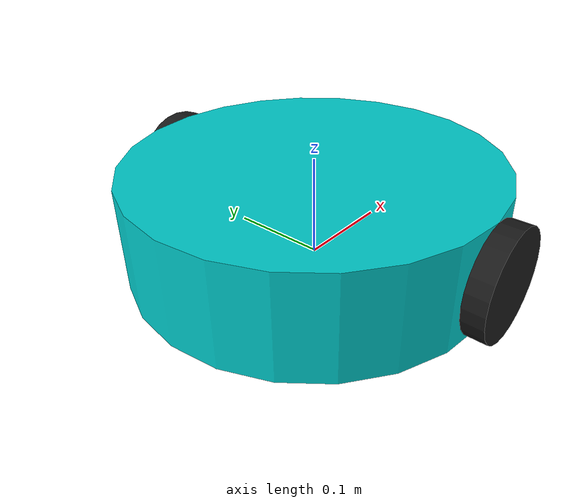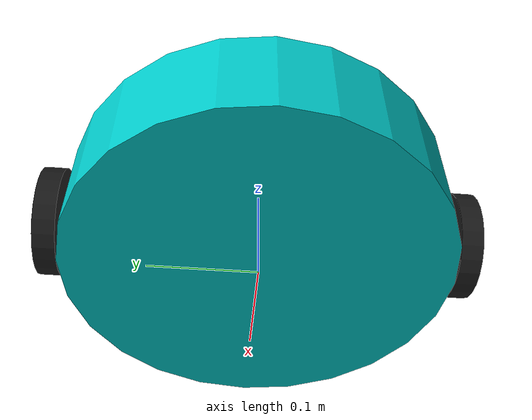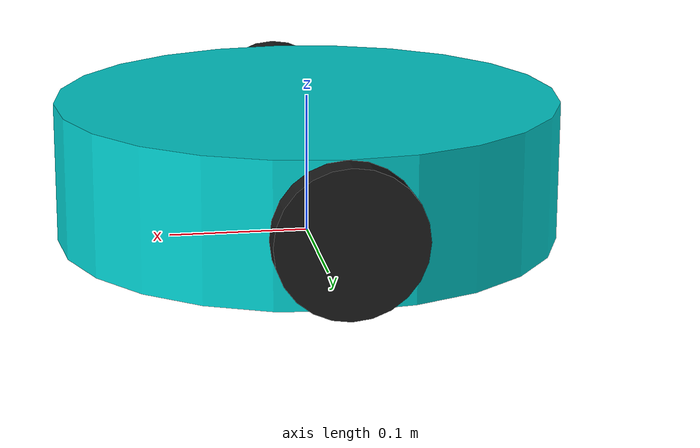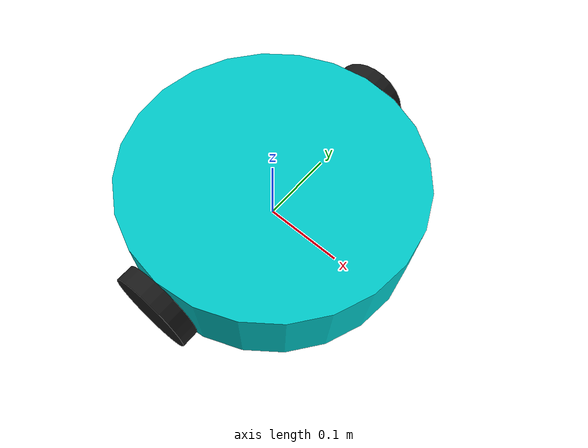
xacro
<?xml version="1.0"?>
<robot xmlns:xacro="http://www.ros.org/wiki/xacro" name="mochibot">

  <material name="chassis_cyan">
    <color rgba="0.0 0.8 0.8 1.0"/>
  </material>
  <material name="wheel_black">
    <color rgba="0.1 0.1 0.1 1.0"/>
  </material>

  <link name="base_footprint"/>

  <joint name="base_footprint_joint" type="fixed">
    <parent link="base_footprint"/>
    <child link="base_link"/>
    <origin xyz="0 0 0.05" rpy="0 0 0"/>
  </joint>

  <link name="base_link">
    <visual>
      <geometry>
        <cylinder radius="0.18" length="0.10"/>
      </geometry>
      <material name="chassis_cyan"/>
    </visual>
    <collision>
      <geometry>
        <cylinder radius="0.18" length="0.10"/>
      </geometry>
    </collision>
  </link>

  <!-- Left Wheel (Pushed out to y = 0.19) -->
  <link name="left_wheel_link">
    <visual>
      <geometry>
        <cylinder radius="0.05" length="0.02"/>
      </geometry>
      <material name="wheel_black"/>
    </visual>
    <collision>
      <geometry>
        <cylinder radius="0.05" length="0.02"/>
      </geometry>
    </collision>
  </link>
  <joint name="left_wheel_joint" type="continuous">
    <parent link="base_link"/>
    <child link="left_wheel_link"/>
    <origin xyz="0 0.19 0" rpy="-1.5708 0 0"/>
    <axis xyz="0 0 1"/>
  </joint>

  <!-- Right Wheel (Pushed out to y = -0.19) -->
  <link name="right_wheel_link">
    <visual>
      <geometry>
        <cylinder radius="0.05" length="0.02"/>
      </geometry>
      <material name="wheel_black"/>
    </visual>
    <collision>
      <geometry>
        <cylinder radius="0.05" length="0.02"/>
      </geometry>
    </collision>
  </link>
  <joint name="right_wheel_joint" type="continuous">
    <parent link="base_link"/>
    <child link="right_wheel_link"/>
    <origin xyz="0 -0.19 0" rpy="-1.5708 0 0"/>
    <axis xyz="0 0 1"/>
  </joint>

  <!-- Caster Wheel -->
  <link name="caster_wheel_link">
    <visual>
      <geometry>
        <sphere radius="0.025"/>
      </geometry>
      <material name="wheel_black"/>
    </visual>
    <collision>
      <geometry>
        <sphere radius="0.025"/>
      </geometry>
    </collision>
  </link>
  <joint name="caster_wheel_joint" type="fixed">
    <parent link="base_link"/>
    <child link="caster_wheel_link"/>
    <origin xyz="0.12 0 -0.025" rpy="0 0 0"/>
  </joint>

</robot>
